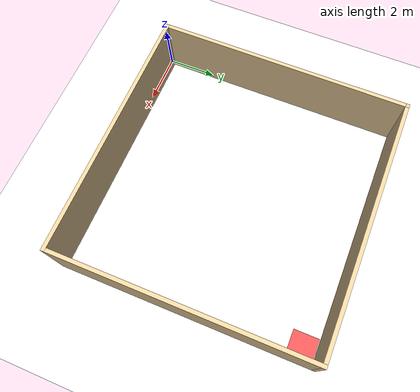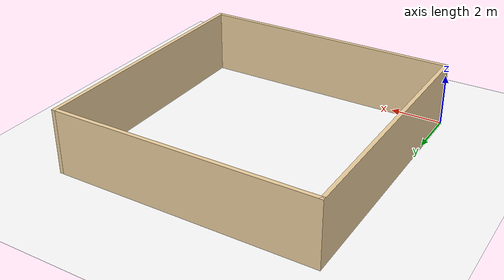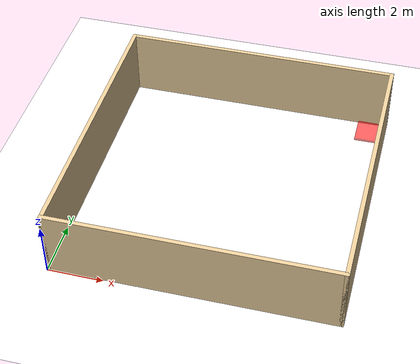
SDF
<sdf version="1.7">
 <world name="default">
  <light name="sun" type="directional">
   <pose>0 0 10 0 -0 0</pose>
   <diffuse>0.8 0.8 0.8 1</diffuse>
   <specular>0.2 0.2 0.2 1</specular>
   <attenuation>
    <range>1000</range>
    <constant>0.9</constant>
    <linear>0.01</linear>
    <quadratic>0.001</quadratic>
   </attenuation>
   <direction>-0.5 0.1 -0.9</direction>
   <spot><inner_angle>0</inner_angle><outer_angle>0</outer_angle><falloff>0</falloff></spot>
  </light>
  <gravity>0 0 -9.8</gravity>
  <magnetic_field>6e-06 2.3e-05 -4.2e-05</magnetic_field>
  <atmosphere type="adiabatic"/>
  <physics type="ode">
   <max_step_size>0.001</max_step_size>
   <real_time_factor>1</real_time_factor>
   <real_time_update_rate>1000</real_time_update_rate>
  </physics>
  <scene><ambient>0.4 0.4 0.4 1</ambient><background>0.7 0.7 0.7 1</background><shadows>1</shadows></scene>
  <audio><device>default</device></audio>
  <spherical_coordinates>
   <surface_model>EARTH_WGS84</surface_model>
   <latitude_deg>0</latitude_deg>
   <longitude_deg>0</longitude_deg>
   <elevation>0</elevation>
   <heading_deg>0</heading_deg>
  </spherical_coordinates>
  <model name="WALL">
   <pose>5.02351 5.11424 0 0 -0 0</pose>
   <link name="Wall_0">
    <collision name="Wall_0_Collision">
     <geometry><box><size>10.15 0.15 2.5</size></box></geometry>
     <pose>0 0 1.25 0 -0 0</pose>
    </collision>
    <visual name="Wall_0_Visual">
     <pose>0 0 1.25 0 -0 0</pose>
     <geometry><box><size>10.15 0.15 2.5</size></box></geometry>
     <material>
      <script><uri>file://media/materials/scripts/gazebo.material</uri><name>Gazebo/Grey</name></script>
      <ambient>0.921569 0.807843 0.615686 1</ambient>
     </material>
     <meta><layer>0</layer></meta>
    </visual>
    <pose>-5 -0 0 0 -0 1.5708</pose>
   </link>
   <link name="Wall_2">
    <collision name="Wall_2_Collision">
     <geometry><box><size>10.15 0.15 2.5</size></box></geometry>
     <pose>0 0 1.25 0 -0 0</pose>
    </collision>
    <visual name="Wall_2_Visual">
     <pose>0 0 1.25 0 -0 0</pose>
     <geometry><box><size>10.15 0.15 2.5</size></box></geometry>
     <material>
      <script><uri>file://media/materials/scripts/gazebo.material</uri><name>Gazebo/Grey</name></script>
      <ambient>0.921569 0.807843 0.615686 1</ambient>
     </material>
     <meta><layer>0</layer></meta>
    </visual>
    <pose>-0 -5 0 0 -0 0</pose>
   </link>
   <link name="Wall_4">
    <collision name="Wall_4_Collision">
     <geometry><box><size>10.15 0.15 2.5</size></box></geometry>
     <pose>0 0 1.25 0 -0 0</pose>
    </collision>
    <visual name="Wall_4_Visual">
     <pose>0 0 1.25 0 -0 0</pose>
     <geometry><box><size>10.15 0.15 2.5</size></box></geometry>
     <material>
      <script><uri>file://media/materials/scripts/gazebo.material</uri><name>Gazebo/Grey</name></script>
      <ambient>0.921569 0.807843 0.615686 1</ambient>
     </material>
     <meta><layer>0</layer></meta>
    </visual>
    <pose>5 -0 0 0 -0 1.5708</pose>
   </link>
   <link name="Wall_6">
    <collision name="Wall_6_Collision">
     <geometry><box><size>10.15 0.15 2.5</size></box></geometry>
     <pose>0 0 1.25 0 -0 0</pose>
    </collision>
    <visual name="Wall_6_Visual">
     <pose>0 0 1.25 0 -0 0</pose>
     <geometry><box><size>10.15 0.15 2.5</size></box></geometry>
     <material>
      <script><uri>file://media/materials/scripts/gazebo.material</uri><name>Gazebo/Grey</name></script>
      <ambient>0.921569 0.807843 0.615686 1</ambient>
     </material>
     <meta><layer>0</layer></meta>
    </visual>
    <pose>-0 5 0 0 -0 3.14159</pose>
   </link>
   <static>1</static>
  </model>
  <model name="ground_plane">
   <static>1</static>
   <link name="link">
    <collision name="collision">
     <geometry><plane><normal>0 0 1</normal><size>100 100</size></plane></geometry>
     <surface><friction><ode><mu>100</mu><mu2>50</mu2></ode></friction></surface>
    </collision>
    <visual name="visual">
     <cast_shadows>0</cast_shadows>
     <geometry><plane><normal>0 0 1</normal><size>100 100</size></plane></geometry>
     <material><ambient>1 1 1 1</ambient><diffuse>1 1 1 1</diffuse></material>
    </visual>
   </link>
   <pose>-1.76997 -0.846079 0 0 -0 0</pose>
  </model>
  <model name="goal_region">
   <static>1</static>
   <pose>9.5 9.5 0.05 0 -0 0</pose>
   <link name="link">
    <visual name="visual">
     <geometry><box><size>1 1 0.1</size></box></geometry>
     <material><ambient>1 0 0 0.6</ambient><diffuse>1 0 0 0.6</diffuse></material>
    </visual>
   </link>
  </model>
  <model name="start_marker"><static>1</static><pose>1 1 0 0 -0 0</pose></model>
 </world>
</sdf>
